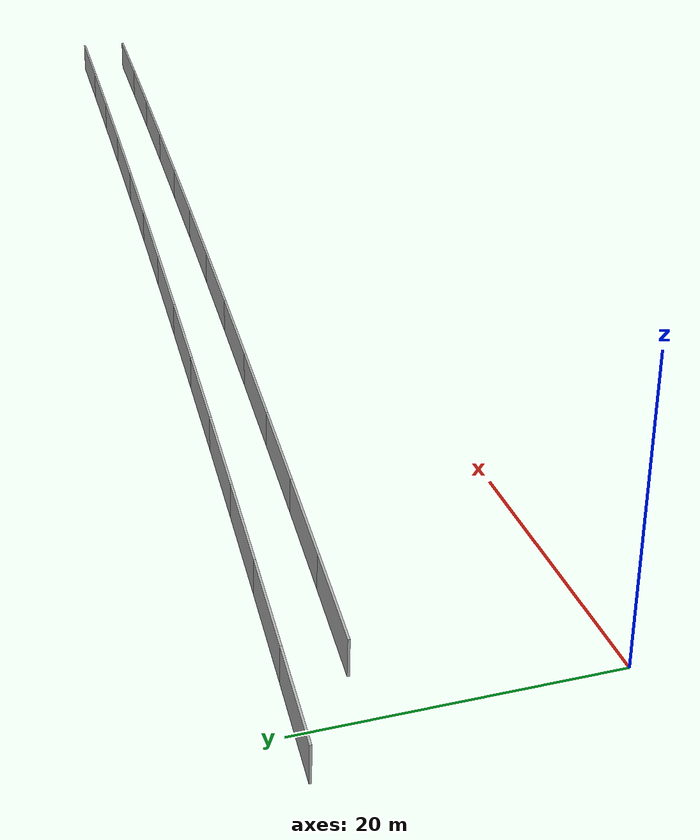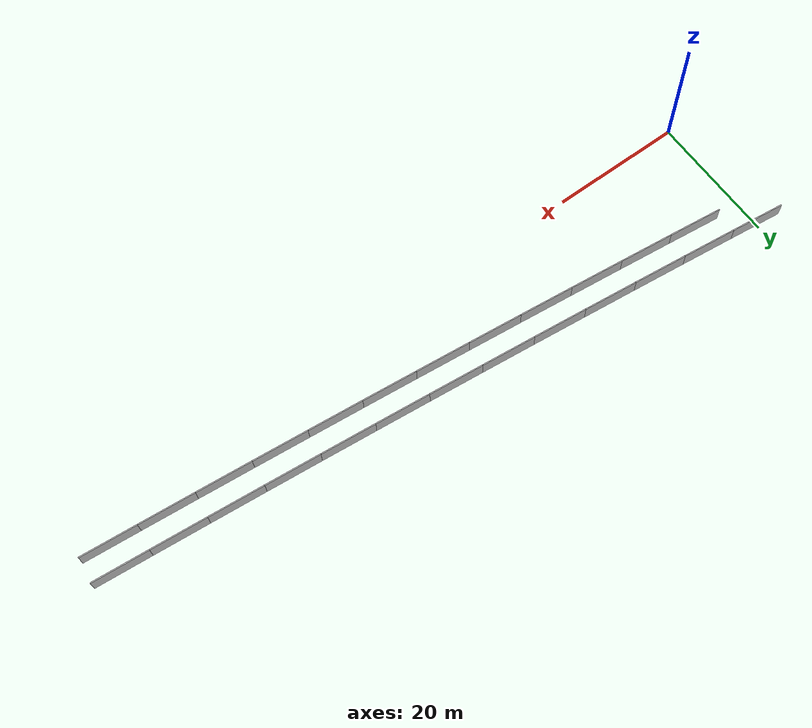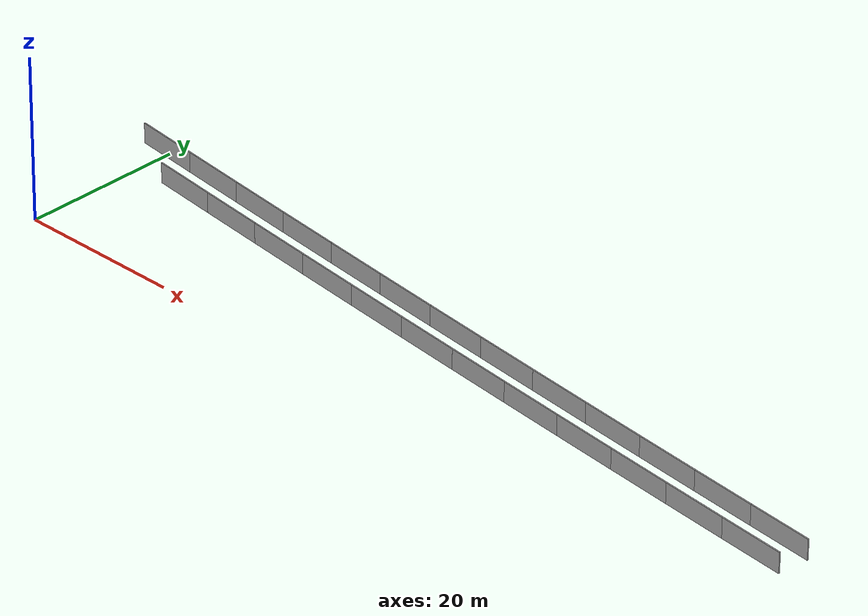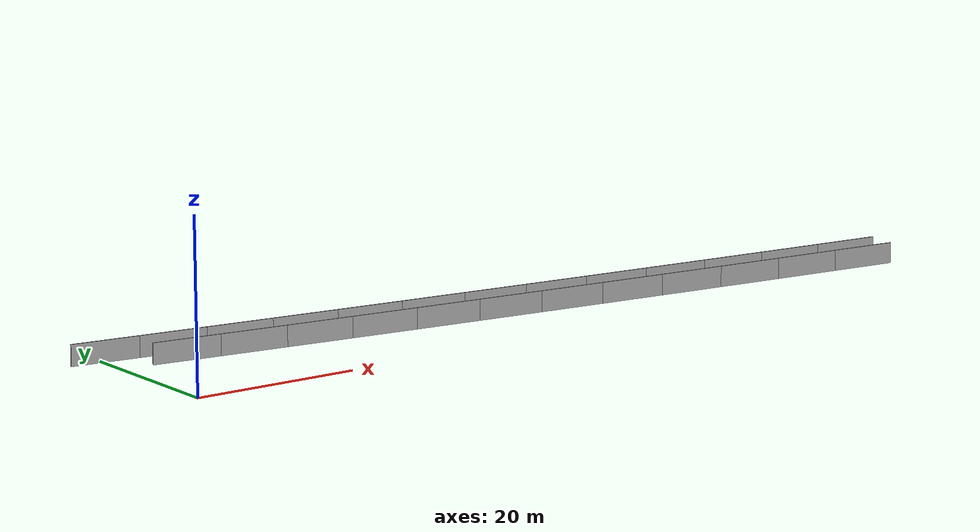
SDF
<?xml version="1.0" ?>
<sdf version="1.6">
  <model name="sps_1801">
    <pose frame="">0 0 0 0 -0 0</pose>
    <static>1</static>
    <self_collide>0</self_collide>
    <allow_auto_disable>0</allow_auto_disable>
    <link name="Wall4266">
      <kinematic>0</kinematic>
      <gravity>1</gravity>
      <self_collide>0</self_collide>
      <collision name="collision">
        <geometry>
          <box>
            <size>8.25185 0.15 2.5</size>
          </box>
        </geometry>
        <pose frame="">0 0 0 0 -0 0</pose>
      </collision>
      <visual name="visual">
        <geometry>
          <box>
            <size>8.25185 0.15 2.5</size>
          </box>
        </geometry>
        <pose frame="">0 0 0 0 -0 0</pose>
        <cast_shadows>1</cast_shadows>
        <transparency>0.0</transparency>
      </visual>
      <pose frame="">0.306663 19.3548 1.25 0 0 -0.116872</pose>
    </link>
    <link name="Wall4267">
      <kinematic>0</kinematic>
      <gravity>1</gravity>
      <self_collide>0</self_collide>
      <collision name="collision">
        <geometry>
          <box>
            <size>8.25187 0.15 2.5</size>
          </box>
        </geometry>
        <pose frame="">0 0 0 0 -0 0</pose>
      </collision>
      <visual name="visual">
        <geometry>
          <box>
            <size>8.25187 0.15 2.5</size>
          </box>
        </geometry>
        <pose frame="">0 0 0 0 -0 0</pose>
        <cast_shadows>1</cast_shadows>
        <transparency>0.0</transparency>
      </visual>
      <pose frame="">8.50335 18.4022 1.25 0 0 -0.114526</pose>
    </link>
    <link name="Wall4268">
      <kinematic>0</kinematic>
      <gravity>1</gravity>
      <self_collide>0</self_collide>
      <collision name="collision">
        <geometry>
          <box>
            <size>8.25166 0.15 2.5</size>
          </box>
        </geometry>
        <pose frame="">0 0 0 0 -0 0</pose>
      </collision>
      <visual name="visual">
        <geometry>
          <box>
            <size>8.25166 0.15 2.5</size>
          </box>
        </geometry>
        <pose frame="">0 0 0 0 -0 0</pose>
        <cast_shadows>1</cast_shadows>
        <transparency>0.0</transparency>
      </visual>
      <pose frame="">16.7022 17.469 1.25 0 0 -0.11214</pose>
    </link>
    <link name="Wall4269">
      <kinematic>0</kinematic>
      <gravity>1</gravity>
      <self_collide>0</self_collide>
      <collision name="collision">
        <geometry>
          <box>
            <size>8.25181 0.15 2.5</size>
          </box>
        </geometry>
        <pose frame="">0 0 0 0 -0 0</pose>
      </collision>
      <visual name="visual">
        <geometry>
          <box>
            <size>8.25181 0.15 2.5</size>
          </box>
        </geometry>
        <pose frame="">0 0 0 0 -0 0</pose>
        <cast_shadows>1</cast_shadows>
        <transparency>0.0</transparency>
      </visual>
      <pose frame="">24.9032 16.5553 1.25 0 0 -0.109771</pose>
    </link>
    <link name="Wall4270">
      <kinematic>0</kinematic>
      <gravity>1</gravity>
      <self_collide>0</self_collide>
      <collision name="collision">
        <geometry>
          <box>
            <size>8.25198 0.15 2.5</size>
          </box>
        </geometry>
        <pose frame="">0 0 0 0 -0 0</pose>
      </collision>
      <visual name="visual">
        <geometry>
          <box>
            <size>8.25198 0.15 2.5</size>
          </box>
        </geometry>
        <pose frame="">0 0 0 0 -0 0</pose>
        <cast_shadows>1</cast_shadows>
        <transparency>0.0</transparency>
      </visual>
      <pose frame="">33.1064 15.6609 1.25 0 0 -0.107425</pose>
    </link>
    <link name="Wall4271">
      <kinematic>0</kinematic>
      <gravity>1</gravity>
      <self_collide>0</self_collide>
      <collision name="collision">
        <geometry>
          <box>
            <size>8.25174 0.15 2.5</size>
          </box>
        </geometry>
        <pose frame="">0 0 0 0 -0 0</pose>
      </collision>
      <visual name="visual">
        <geometry>
          <box>
            <size>8.25174 0.15 2.5</size>
          </box>
        </geometry>
        <pose frame="">0 0 0 0 -0 0</pose>
        <cast_shadows>1</cast_shadows>
        <transparency>0.0</transparency>
      </visual>
      <pose frame="">41.3118 14.7858 1.25 0 0 -0.10507</pose>
    </link>
    <link name="Wall4272">
      <kinematic>0</kinematic>
      <gravity>1</gravity>
      <self_collide>0</self_collide>
      <collision name="collision">
        <geometry>
          <box>
            <size>8.25202 0.15 2.5</size>
          </box>
        </geometry>
        <pose frame="">0 0 0 0 -0 0</pose>
      </collision>
      <visual name="visual">
        <geometry>
          <box>
            <size>8.25202 0.15 2.5</size>
          </box>
        </geometry>
        <pose frame="">0 0 0 0 -0 0</pose>
        <cast_shadows>1</cast_shadows>
        <transparency>0.0</transparency>
      </visual>
      <pose frame="">49.5192 13.9302 1.25 0 0 -0.10268</pose>
    </link>
    <link name="Wall4273">
      <kinematic>0</kinematic>
      <gravity>1</gravity>
      <self_collide>0</self_collide>
      <collision name="collision">
        <geometry>
          <box>
            <size>8.25171 0.15 2.5</size>
          </box>
        </geometry>
        <pose frame="">0 0 0 0 -0 0</pose>
      </collision>
      <visual name="visual">
        <geometry>
          <box>
            <size>8.25171 0.15 2.5</size>
          </box>
        </geometry>
        <pose frame="">0 0 0 0 -0 0</pose>
        <cast_shadows>1</cast_shadows>
        <transparency>0.0</transparency>
      </visual>
      <pose frame="">57.7285 13.094 1.25 0 0 -0.100341</pose>
    </link>
    <link name="Wall4274">
      <kinematic>0</kinematic>
      <gravity>1</gravity>
      <self_collide>0</self_collide>
      <collision name="collision">
        <geometry>
          <box>
            <size>8.25196 0.15 2.5</size>
          </box>
        </geometry>
        <pose frame="">0 0 0 0 -0 0</pose>
      </collision>
      <visual name="visual">
        <geometry>
          <box>
            <size>8.25196 0.15 2.5</size>
          </box>
        </geometry>
        <pose frame="">0 0 0 0 -0 0</pose>
        <cast_shadows>1</cast_shadows>
        <transparency>0.0</transparency>
      </visual>
      <pose frame="">65.9398 12.2772 1.25 0 0 -0.0979524</pose>
    </link>
    <link name="Wall4275">
      <kinematic>0</kinematic>
      <gravity>1</gravity>
      <self_collide>0</self_collide>
      <collision name="collision">
        <geometry>
          <box>
            <size>8.25192 0.15 2.5</size>
          </box>
        </geometry>
        <pose frame="">0 0 0 0 -0 0</pose>
      </collision>
      <visual name="visual">
        <geometry>
          <box>
            <size>8.25192 0.15 2.5</size>
          </box>
        </geometry>
        <pose frame="">0 0 0 0 -0 0</pose>
        <cast_shadows>1</cast_shadows>
        <transparency>0.0</transparency>
      </visual>
      <pose frame="">74.1532 11.4798 1.25 0 0 -0.0956119</pose>
    </link>
    <link name="Wall4276">
      <kinematic>0</kinematic>
      <gravity>1</gravity>
      <self_collide>0</self_collide>
      <collision name="collision">
        <geometry>
          <box>
            <size>8.25184 0.15 2.5</size>
          </box>
        </geometry>
        <pose frame="">0 0 0 0 -0 0</pose>
      </collision>
      <visual name="visual">
        <geometry>
          <box>
            <size>8.25184 0.15 2.5</size>
          </box>
        </geometry>
        <pose frame="">0 0 0 0 -0 0</pose>
        <cast_shadows>1</cast_shadows>
        <transparency>0.0</transparency>
      </visual>
      <pose frame="">82.3683 10.7018 1.25 0 0 -0.093228</pose>
    </link>
    <link name="Wall4277">
      <kinematic>0</kinematic>
      <gravity>1</gravity>
      <self_collide>0</self_collide>
      <collision name="collision">
        <geometry>
          <box>
            <size>8.25184 0.15 2.5</size>
          </box>
        </geometry>
        <pose frame="">0 0 0 0 -0 0</pose>
      </collision>
      <visual name="visual">
        <geometry>
          <box>
            <size>8.25184 0.15 2.5</size>
          </box>
        </geometry>
        <pose frame="">0 0 0 0 -0 0</pose>
        <cast_shadows>1</cast_shadows>
        <transparency>0.0</transparency>
      </visual>
      <pose frame="">90.5852 9.94319 1.25 0 0 -0.0908956</pose>
    </link>
    <link name="Wall4278">
      <kinematic>0</kinematic>
      <gravity>1</gravity>
      <self_collide>0</self_collide>
      <collision name="collision">
        <geometry>
          <box>
            <size>8.25208 0.15 2.5</size>
          </box>
        </geometry>
        <pose frame="">0 0 0 0 -0 0</pose>
      </collision>
      <visual name="visual">
        <geometry>
          <box>
            <size>8.25208 0.15 2.5</size>
          </box>
        </geometry>
        <pose frame="">0 0 0 0 -0 0</pose>
        <cast_shadows>1</cast_shadows>
        <transparency>0.0</transparency>
      </visual>
      <pose frame="">98.8039 9.20399 1.25 0 0 -0.0885017</pose>
    </link>
    <link name="Wall9009">
      <kinematic>0</kinematic>
      <gravity>1</gravity>
      <self_collide>0</self_collide>
      <collision name="collision">
        <geometry>
          <box>
            <size>8.26198 0.15 2.5</size>
          </box>
        </geometry>
        <pose frame="">0 0 0 0 -0 0</pose>
      </collision>
      <visual name="visual">
        <geometry>
          <box>
            <size>8.26198 0.15 2.5</size>
          </box>
        </geometry>
        <pose frame="">0 0 0 0 -0 0</pose>
        <cast_shadows>1</cast_shadows>
        <transparency>0.0</transparency>
      </visual>
      <pose frame="">7.94335 14.6851 1.25 0 0 -0.114557</pose>
    </link>
    <link name="Wall9010">
      <kinematic>0</kinematic>
      <gravity>1</gravity>
      <self_collide>0</self_collide>
      <collision name="collision">
        <geometry>
          <box>
            <size>8.26172 0.15 2.5</size>
          </box>
        </geometry>
        <pose frame="">0 0 0 0 -0 0</pose>
      </collision>
      <visual name="visual">
        <geometry>
          <box>
            <size>8.26172 0.15 2.5</size>
          </box>
        </geometry>
        <pose frame="">0 0 0 0 -0 0</pose>
        <cast_shadows>1</cast_shadows>
        <transparency>0.0</transparency>
      </visual>
      <pose frame="">16.1522 13.7504 1.25 0 0 -0.112196</pose>
    </link>
    <link name="Wall9011">
      <kinematic>0</kinematic>
      <gravity>1</gravity>
      <self_collide>0</self_collide>
      <collision name="collision">
        <geometry>
          <box>
            <size>8.2618 0.15 2.5</size>
          </box>
        </geometry>
        <pose frame="">0 0 0 0 -0 0</pose>
      </collision>
      <visual name="visual">
        <geometry>
          <box>
            <size>8.2618 0.15 2.5</size>
          </box>
        </geometry>
        <pose frame="">0 0 0 0 -0 0</pose>
        <cast_shadows>1</cast_shadows>
        <transparency>0.0</transparency>
      </visual>
      <pose frame="">24.3631 12.8352 1.25 0 0 -0.109809</pose>
    </link>
    <link name="Wall9012">
      <kinematic>0</kinematic>
      <gravity>1</gravity>
      <self_collide>0</self_collide>
      <collision name="collision">
        <geometry>
          <box>
            <size>8.26182 0.15 2.5</size>
          </box>
        </geometry>
        <pose frame="">0 0 0 0 -0 0</pose>
      </collision>
      <visual name="visual">
        <geometry>
          <box>
            <size>8.26182 0.15 2.5</size>
          </box>
        </geometry>
        <pose frame="">0 0 0 0 -0 0</pose>
        <cast_shadows>1</cast_shadows>
        <transparency>0.0</transparency>
      </visual>
      <pose frame="">32.5762 11.9395 1.25 0 0 -0.107453</pose>
    </link>
    <link name="Wall9013">
      <kinematic>0</kinematic>
      <gravity>1</gravity>
      <self_collide>0</self_collide>
      <collision name="collision">
        <geometry>
          <box>
            <size>8.26176 0.15 2.5</size>
          </box>
        </geometry>
        <pose frame="">0 0 0 0 -0 0</pose>
      </collision>
      <visual name="visual">
        <geometry>
          <box>
            <size>8.26176 0.15 2.5</size>
          </box>
        </geometry>
        <pose frame="">0 0 0 0 -0 0</pose>
        <cast_shadows>1</cast_shadows>
        <transparency>0.0</transparency>
      </visual>
      <pose frame="">40.7913 11.0632 1.25 0 0 -0.105083</pose>
    </link>
    <link name="Wall9014">
      <kinematic>0</kinematic>
      <gravity>1</gravity>
      <self_collide>0</self_collide>
      <collision name="collision">
        <geometry>
          <box>
            <size>8.262 0.15 2.5</size>
          </box>
        </geometry>
        <pose frame="">0 0 0 0 -0 0</pose>
      </collision>
      <visual name="visual">
        <geometry>
          <box>
            <size>8.262 0.15 2.5</size>
          </box>
        </geometry>
        <pose frame="">0 0 0 0 -0 0</pose>
        <cast_shadows>1</cast_shadows>
        <transparency>0.0</transparency>
      </visual>
      <pose frame="">49.0087 10.2063 1.25 0 0 -0.102726</pose>
    </link>
    <link name="Wall9015">
      <kinematic>0</kinematic>
      <gravity>1</gravity>
      <self_collide>0</self_collide>
      <collision name="collision">
        <geometry>
          <box>
            <size>8.26173 0.15 2.5</size>
          </box>
        </geometry>
        <pose frame="">0 0 0 0 -0 0</pose>
      </collision>
      <visual name="visual">
        <geometry>
          <box>
            <size>8.26173 0.15 2.5</size>
          </box>
        </geometry>
        <pose frame="">0 0 0 0 -0 0</pose>
        <cast_shadows>1</cast_shadows>
        <transparency>0.0</transparency>
      </visual>
      <pose frame="">57.228 9.36879 1.25 0 0 -0.10036</pose>
    </link>
    <link name="Wall9016">
      <kinematic>0</kinematic>
      <gravity>1</gravity>
      <self_collide>0</self_collide>
      <collision name="collision">
        <geometry>
          <box>
            <size>8.26187 0.15 2.5</size>
          </box>
        </geometry>
        <pose frame="">0 0 0 0 -0 0</pose>
      </collision>
      <visual name="visual">
        <geometry>
          <box>
            <size>8.26187 0.15 2.5</size>
          </box>
        </geometry>
        <pose frame="">0 0 0 0 -0 0</pose>
        <cast_shadows>1</cast_shadows>
        <transparency>0.0</transparency>
      </visual>
      <pose frame="">65.4491 8.5507 1.25 0 0 -0.0980051</pose>
    </link>
    <link name="Wall9017">
      <kinematic>0</kinematic>
      <gravity>1</gravity>
      <self_collide>0</self_collide>
      <collision name="collision">
        <geometry>
          <box>
            <size>8.26176 0.15 2.5</size>
          </box>
        </geometry>
        <pose frame="">0 0 0 0 -0 0</pose>
      </collision>
      <visual name="visual">
        <geometry>
          <box>
            <size>8.26176 0.15 2.5</size>
          </box>
        </geometry>
        <pose frame="">0 0 0 0 -0 0</pose>
        <cast_shadows>1</cast_shadows>
        <transparency>0.0</transparency>
      </visual>
      <pose frame="">73.6723 7.752 1.25 0 0 -0.0956462</pose>
    </link>
    <link name="Wall9018">
      <kinematic>0</kinematic>
      <gravity>1</gravity>
      <self_collide>0</self_collide>
      <collision name="collision">
        <geometry>
          <box>
            <size>8.26167 0.15 2.5</size>
          </box>
        </geometry>
        <pose frame="">0 0 0 0 -0 0</pose>
      </collision>
      <visual name="visual">
        <geometry>
          <box>
            <size>8.26167 0.15 2.5</size>
          </box>
        </geometry>
        <pose frame="">0 0 0 0 -0 0</pose>
        <cast_shadows>1</cast_shadows>
        <transparency>0.0</transparency>
      </visual>
      <pose frame="">81.8971 6.97279 1.25 0 0 -0.0932651</pose>
    </link>
    <link name="Wall9019">
      <kinematic>0</kinematic>
      <gravity>1</gravity>
      <self_collide>0</self_collide>
      <collision name="collision">
        <geometry>
          <box>
            <size>8.26171 0.15 2.5</size>
          </box>
        </geometry>
        <pose frame="">0 0 0 0 -0 0</pose>
      </collision>
      <visual name="visual">
        <geometry>
          <box>
            <size>8.26171 0.15 2.5</size>
          </box>
        </geometry>
        <pose frame="">0 0 0 0 -0 0</pose>
        <cast_shadows>1</cast_shadows>
        <transparency>0.0</transparency>
      </visual>
      <pose frame="">90.1238 6.21309 1.25 0 0 -0.0909054</pose>
    </link>
    <link name="Wall9020">
      <kinematic>0</kinematic>
      <gravity>1</gravity>
      <self_collide>0</self_collide>
      <collision name="collision">
        <geometry>
          <box>
            <size>8.2618 0.15 2.5</size>
          </box>
        </geometry>
        <pose frame="">0 0 0 0 -0 0</pose>
      </collision>
      <visual name="visual">
        <geometry>
          <box>
            <size>8.2618 0.15 2.5</size>
          </box>
        </geometry>
        <pose frame="">0 0 0 0 -0 0</pose>
        <cast_shadows>1</cast_shadows>
        <transparency>0.0</transparency>
      </visual>
      <pose frame="">98.3523 5.47279 1.25 0 0 -0.0885457</pose>
    </link>
  </model>
</sdf>
